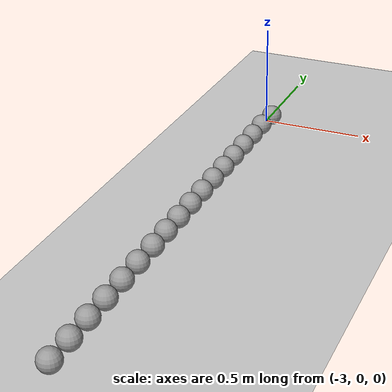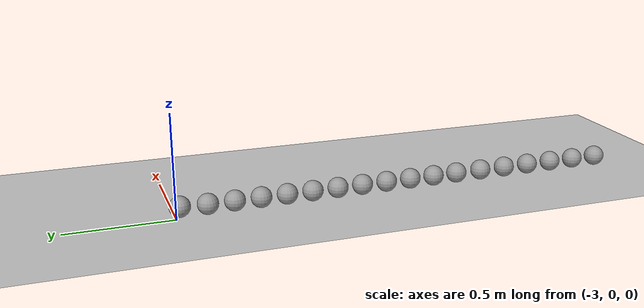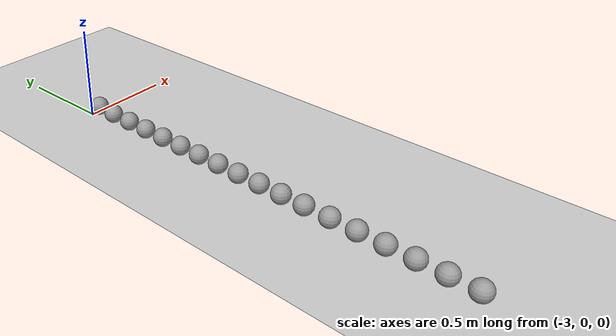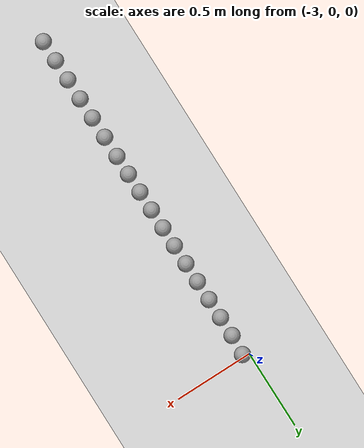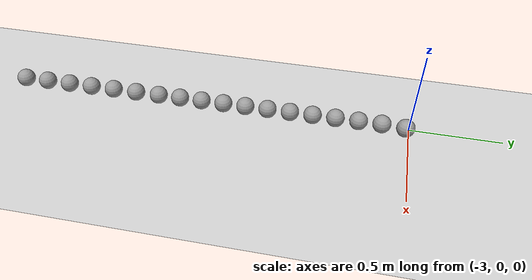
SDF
<sdf version="1.6">
 <world name="default">
  <model name="ground_plane">
   <static>1</static>
   <link name="link">
    <collision name="collision">
     <geometry><plane><normal>0 0 1</normal><size>100 100</size></plane></geometry>
     <surface><friction><ode><mu>100</mu><mu2>50</mu2></ode></friction></surface>
    </collision>
    <visual name="visual">
     <cast_shadows>0</cast_shadows>
     <geometry><plane><normal>0 0 1</normal><size>100 100</size></plane></geometry>
     <material>
      <script><uri>file://media/materials/scripts/gazebo.material</uri><name>Gazebo/Grey</name></script>
     </material>
    </visual>
   </link>
  </model>
  <model name="unit_sphere_0_59">
   <pose>-2.962000 -0.022000 0.050000 0 -0 0</pose>
   <link name="link">
    <inertial>
     <mass>1</mass>
     <inertia><ixx>0.1</ixx><ixy>0</ixy><ixz>0</ixz><iyy>0.1</iyy><iyz>0</iyz><izz>0.1</izz></inertia>
    </inertial>
    <collision name="collision"><geometry><sphere><radius>0.050000</radius></sphere></geometry></collision>
    <visual name="visual">
     <geometry><sphere><radius>0.050000</radius></sphere></geometry>
     <material>
      <script><name>Gazebo/Grey</name><uri>file://media/materials/scripts/gazebo.material</uri></script>
     </material>
    </visual>
   </link>
  </model>
  <model name="unit_sphere_0_60">
   <pose>-2.970000 -0.150000 0.050000 0 -0 0</pose>
   <link name="link">
    <inertial>
     <mass>1</mass>
     <inertia><ixx>0.1</ixx><ixy>0</ixy><ixz>0</ixz><iyy>0.1</iyy><iyz>0</iyz><izz>0.1</izz></inertia>
    </inertial>
    <collision name="collision"><geometry><sphere><radius>0.050000</radius></sphere></geometry></collision>
    <visual name="visual">
     <geometry><sphere><radius>0.050000</radius></sphere></geometry>
     <material>
      <script><name>Gazebo/Grey</name><uri>file://media/materials/scripts/gazebo.material</uri></script>
     </material>
    </visual>
   </link>
  </model>
  <model name="unit_sphere_0_61">
   <pose>-2.969000 -0.276000 0.050000 0 -0 0</pose>
   <link name="link">
    <inertial>
     <mass>1</mass>
     <inertia><ixx>0.1</ixx><ixy>0</ixy><ixz>0</ixz><iyy>0.1</iyy><iyz>0</iyz><izz>0.1</izz></inertia>
    </inertial>
    <collision name="collision"><geometry><sphere><radius>0.050000</radius></sphere></geometry></collision>
    <visual name="visual">
     <geometry><sphere><radius>0.050000</radius></sphere></geometry>
     <material>
      <script><name>Gazebo/Grey</name><uri>file://media/materials/scripts/gazebo.material</uri></script>
     </material>
    </visual>
   </link>
  </model>
  <model name="unit_sphere_0_62">
   <pose>-2.968000 -0.402000 0.050000 0 -0 0</pose>
   <link name="link">
    <inertial>
     <mass>1</mass>
     <inertia><ixx>0.1</ixx><ixy>0</ixy><ixz>0</ixz><iyy>0.1</iyy><iyz>0</iyz><izz>0.1</izz></inertia>
    </inertial>
    <collision name="collision"><geometry><sphere><radius>0.050000</radius></sphere></geometry></collision>
    <visual name="visual">
     <geometry><sphere><radius>0.050000</radius></sphere></geometry>
     <material>
      <script><name>Gazebo/Grey</name><uri>file://media/materials/scripts/gazebo.material</uri></script>
     </material>
    </visual>
   </link>
  </model>
  <model name="unit_sphere_0_63">
   <pose>-2.967000 -0.528000 0.050000 0 -0 0</pose>
   <link name="link">
    <inertial>
     <mass>1</mass>
     <inertia><ixx>0.1</ixx><ixy>0</ixy><ixz>0</ixz><iyy>0.1</iyy><iyz>0</iyz><izz>0.1</izz></inertia>
    </inertial>
    <collision name="collision"><geometry><sphere><radius>0.050000</radius></sphere></geometry></collision>
    <visual name="visual">
     <geometry><sphere><radius>0.050000</radius></sphere></geometry>
     <material>
      <script><name>Gazebo/Grey</name><uri>file://media/materials/scripts/gazebo.material</uri></script>
     </material>
    </visual>
   </link>
  </model>
  <model name="unit_sphere_0_64">
   <pose>-2.966000 -0.654000 0.050000 0 -0 0</pose>
   <link name="link">
    <inertial>
     <mass>1</mass>
     <inertia><ixx>0.1</ixx><ixy>0</ixy><ixz>0</ixz><iyy>0.1</iyy><iyz>0</iyz><izz>0.1</izz></inertia>
    </inertial>
    <collision name="collision"><geometry><sphere><radius>0.050000</radius></sphere></geometry></collision>
    <visual name="visual">
     <geometry><sphere><radius>0.050000</radius></sphere></geometry>
     <material>
      <script><name>Gazebo/Grey</name><uri>file://media/materials/scripts/gazebo.material</uri></script>
     </material>
    </visual>
   </link>
  </model>
  <model name="unit_sphere_0_65">
   <pose>-2.965000 -0.780000 0.050000 0 -0 0</pose>
   <link name="link">
    <inertial>
     <mass>1</mass>
     <inertia><ixx>0.1</ixx><ixy>0</ixy><ixz>0</ixz><iyy>0.1</iyy><iyz>0</iyz><izz>0.1</izz></inertia>
    </inertial>
    <collision name="collision"><geometry><sphere><radius>0.050000</radius></sphere></geometry></collision>
    <visual name="visual">
     <geometry><sphere><radius>0.050000</radius></sphere></geometry>
     <material>
      <script><name>Gazebo/Grey</name><uri>file://media/materials/scripts/gazebo.material</uri></script>
     </material>
    </visual>
   </link>
  </model>
  <model name="unit_sphere_0_66">
   <pose>-2.964000 -0.906000 0.050000 0 -0 0</pose>
   <link name="link">
    <inertial>
     <mass>1</mass>
     <inertia><ixx>0.1</ixx><ixy>0</ixy><ixz>0</ixz><iyy>0.1</iyy><iyz>0</iyz><izz>0.1</izz></inertia>
    </inertial>
    <collision name="collision"><geometry><sphere><radius>0.050000</radius></sphere></geometry></collision>
    <visual name="visual">
     <geometry><sphere><radius>0.050000</radius></sphere></geometry>
     <material>
      <script><name>Gazebo/Grey</name><uri>file://media/materials/scripts/gazebo.material</uri></script>
     </material>
    </visual>
   </link>
  </model>
  <model name="unit_sphere_0_67">
   <pose>-2.963000 -1.032000 0.050000 0 -0 0</pose>
   <link name="link">
    <inertial>
     <mass>1</mass>
     <inertia><ixx>0.1</ixx><ixy>0</ixy><ixz>0</ixz><iyy>0.1</iyy><iyz>0</iyz><izz>0.1</izz></inertia>
    </inertial>
    <collision name="collision"><geometry><sphere><radius>0.050000</radius></sphere></geometry></collision>
    <visual name="visual">
     <geometry><sphere><radius>0.050000</radius></sphere></geometry>
     <material>
      <script><name>Gazebo/Grey</name><uri>file://media/materials/scripts/gazebo.material</uri></script>
     </material>
    </visual>
   </link>
  </model>
  <model name="unit_sphere_0_68">
   <pose>-2.962000 -1.158000 0.050000 0 -0 0</pose>
   <link name="link">
    <inertial>
     <mass>1</mass>
     <inertia><ixx>0.1</ixx><ixy>0</ixy><ixz>0</ixz><iyy>0.1</iyy><iyz>0</iyz><izz>0.1</izz></inertia>
    </inertial>
    <collision name="collision"><geometry><sphere><radius>0.050000</radius></sphere></geometry></collision>
    <visual name="visual">
     <geometry><sphere><radius>0.050000</radius></sphere></geometry>
     <material>
      <script><name>Gazebo/Grey</name><uri>file://media/materials/scripts/gazebo.material</uri></script>
     </material>
    </visual>
   </link>
  </model>
  <model name="unit_sphere_0_69">
   <pose>-2.961000 -1.284000 0.050000 0 -0 0</pose>
   <link name="link">
    <inertial>
     <mass>1</mass>
     <inertia><ixx>0.1</ixx><ixy>0</ixy><ixz>0</ixz><iyy>0.1</iyy><iyz>0</iyz><izz>0.1</izz></inertia>
    </inertial>
    <collision name="collision"><geometry><sphere><radius>0.050000</radius></sphere></geometry></collision>
    <visual name="visual">
     <geometry><sphere><radius>0.050000</radius></sphere></geometry>
     <material>
      <script><name>Gazebo/Grey</name><uri>file://media/materials/scripts/gazebo.material</uri></script>
     </material>
    </visual>
   </link>
  </model>
  <model name="unit_sphere_0_70">
   <pose>-2.960000 -1.410000 0.050000 0 -0 0</pose>
   <link name="link">
    <inertial>
     <mass>1</mass>
     <inertia><ixx>0.1</ixx><ixy>0</ixy><ixz>0</ixz><iyy>0.1</iyy><iyz>0</iyz><izz>0.1</izz></inertia>
    </inertial>
    <collision name="collision"><geometry><sphere><radius>0.050000</radius></sphere></geometry></collision>
    <visual name="visual">
     <geometry><sphere><radius>0.050000</radius></sphere></geometry>
     <material>
      <script><name>Gazebo/Grey</name><uri>file://media/materials/scripts/gazebo.material</uri></script>
     </material>
    </visual>
   </link>
  </model>
  <model name="unit_sphere_0_71">
   <pose>-2.959000 -1.545000 0.050000 0 -0 0</pose>
   <link name="link">
    <inertial>
     <mass>1</mass>
     <inertia><ixx>0.1</ixx><ixy>0</ixy><ixz>0</ixz><iyy>0.1</iyy><iyz>0</iyz><izz>0.1</izz></inertia>
    </inertial>
    <collision name="collision"><geometry><sphere><radius>0.050000</radius></sphere></geometry></collision>
    <visual name="visual">
     <geometry><sphere><radius>0.050000</radius></sphere></geometry>
     <material>
      <script><name>Gazebo/Grey</name><uri>file://media/materials/scripts/gazebo.material</uri></script>
     </material>
    </visual>
   </link>
  </model>
  <model name="unit_sphere_0_72">
   <pose>-2.958000 -1.680000 0.050000 0 -0 0</pose>
   <link name="link">
    <inertial>
     <mass>1</mass>
     <inertia><ixx>0.1</ixx><ixy>0</ixy><ixz>0</ixz><iyy>0.1</iyy><iyz>0</iyz><izz>0.1</izz></inertia>
    </inertial>
    <collision name="collision"><geometry><sphere><radius>0.050000</radius></sphere></geometry></collision>
    <visual name="visual">
     <geometry><sphere><radius>0.050000</radius></sphere></geometry>
     <material>
      <script><name>Gazebo/Grey</name><uri>file://media/materials/scripts/gazebo.material</uri></script>
     </material>
    </visual>
   </link>
  </model>
  <model name="unit_sphere_0_73">
   <pose>-2.957000 -1.815000 0.050000 0 -0 0</pose>
   <link name="link">
    <inertial>
     <mass>1</mass>
     <inertia><ixx>0.1</ixx><ixy>0</ixy><ixz>0</ixz><iyy>0.1</iyy><iyz>0</iyz><izz>0.1</izz></inertia>
    </inertial>
    <collision name="collision"><geometry><sphere><radius>0.050000</radius></sphere></geometry></collision>
    <visual name="visual">
     <geometry><sphere><radius>0.050000</radius></sphere></geometry>
     <material>
      <script><name>Gazebo/Grey</name><uri>file://media/materials/scripts/gazebo.material</uri></script>
     </material>
    </visual>
   </link>
  </model>
  <model name="unit_sphere_0_74">
   <pose>-2.956000 -1.950000 0.050000 0 -0 0</pose>
   <link name="link">
    <inertial>
     <mass>1</mass>
     <inertia><ixx>0.1</ixx><ixy>0</ixy><ixz>0</ixz><iyy>0.1</iyy><iyz>0</iyz><izz>0.1</izz></inertia>
    </inertial>
    <collision name="collision"><geometry><sphere><radius>0.050000</radius></sphere></geometry></collision>
    <visual name="visual">
     <geometry><sphere><radius>0.050000</radius></sphere></geometry>
     <material>
      <script><name>Gazebo/Grey</name><uri>file://media/materials/scripts/gazebo.material</uri></script>
     </material>
    </visual>
   </link>
  </model>
  <model name="unit_sphere_0_75">
   <pose>-2.955000 -2.085000 0.050000 0 -0 0</pose>
   <link name="link">
    <inertial>
     <mass>1</mass>
     <inertia><ixx>0.1</ixx><ixy>0</ixy><ixz>0</ixz><iyy>0.1</iyy><iyz>0</iyz><izz>0.1</izz></inertia>
    </inertial>
    <collision name="collision"><geometry><sphere><radius>0.050000</radius></sphere></geometry></collision>
    <visual name="visual">
     <geometry><sphere><radius>0.050000</radius></sphere></geometry>
     <material>
      <script><name>Gazebo/Grey</name><uri>file://media/materials/scripts/gazebo.material</uri></script>
     </material>
    </visual>
   </link>
  </model>
  <model name="unit_sphere_0_76">
   <pose>-2.954000 -2.220000 0.050000 0 -0 0</pose>
   <link name="link">
    <inertial>
     <mass>1</mass>
     <inertia><ixx>0.1</ixx><ixy>0</ixy><ixz>0</ixz><iyy>0.1</iyy><iyz>0</iyz><izz>0.1</izz></inertia>
    </inertial>
    <collision name="collision"><geometry><sphere><radius>0.050000</radius></sphere></geometry></collision>
    <visual name="visual">
     <geometry><sphere><radius>0.050000</radius></sphere></geometry>
     <material>
      <script><name>Gazebo/Grey</name><uri>file://media/materials/scripts/gazebo.material</uri></script>
     </material>
    </visual>
   </link>
  </model>
 </world>
</sdf>
